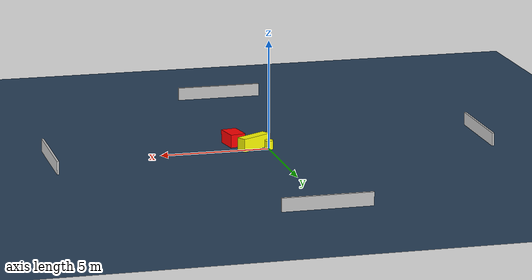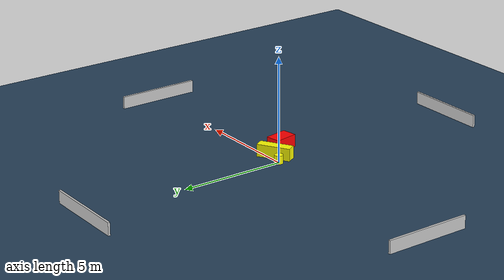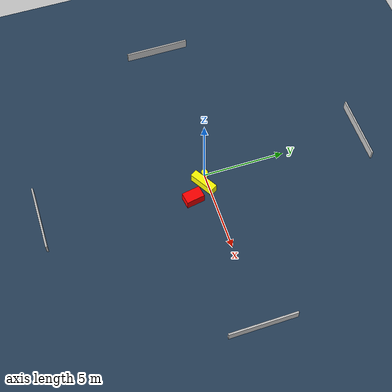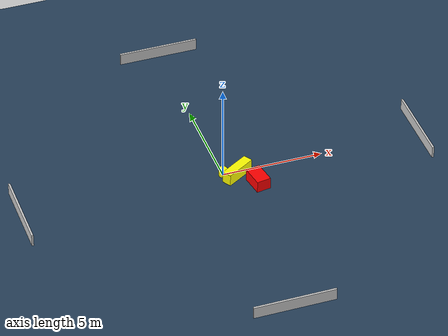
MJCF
<?xml version="1.0" ?>
<mujoco model="generated_environment">
  <option timestep="0.01" integrator="RK4" cone="elliptic"/>
  <default>
    <geom density="1"/>
  </default>
  <asset>
    <texture builtin="gradient" height="3072" name="skybox" rgb1="0.3 0.5 0.7" rgb2="0 0 0" type="skybox" width="512"/>
    <texture builtin="checker" height="300" name="groundplane" rgb1="0.2 0.3 0.4" rgb2="0.1 0.2 0.3" type="2d" width="300"/>
    <material name="groundplane" reflectance="0.2" texrepeat="5 5" texture="groundplane"/>
  </asset>
  <worldbody>
    <light dir="0 0 -1" directional="true" pos="0 0 1.5"/>
    <geom condim="3" friction="0.5 0.005 0.001" material="groundplane" name="floor" pos="0 0 0" size="0 0 0.05" type="plane"/>
    <body name="walls">
      <geom name="wall_1" condim="4" pos="-10.0 0.0 0.3" rgba="0.800000011920929 0.800000011920929 0.800000011920929 1.0" size="0.05 2.0 0.3" type="box"/>
      <geom name="wall_2" condim="4" pos="10.0 0.0 0.3" rgba="0.800000011920929 0.800000011920929 0.800000011920929 1.0" size="0.05 2.0 0.3" type="box"/>
      <geom name="wall_3" condim="4" pos="0.0 -10.0 0.3" rgba="0.800000011920929 0.800000011920929 0.800000011920929 1.0" size="2.0 0.05 0.3" type="box"/>
      <geom name="wall_4" condim="4" pos="0.0 10.0 0.3" rgba="0.800000011920929 0.800000011920929 0.800000011920929 1.0" size="2.0 0.05 0.3" type="box"/>
    </body>
    <body name="robot">
      <joint name="joint_x" type="slide" pos="0 0 0" axis="1 0 0"/>
      <joint name="joint_y" type="slide" pos="0 0 0" axis="0 1 0"/>
      <geom name="robot" type="cylinder" pos="0.0 0.0 0.2" size="0.2 0.2 0.0" mass="5.0" friction="1.0 0.005 0.0001" condim="4" rgba="1.0 1.0 0.0 1.0"/>
    </body>
    <body name="obstacle_1_movable">
      <geom name="obstacle_1_movable" condim="4" pos="0.6385879574856291 -0.26482881326661656 0.3" euler="0 0 300.88109935378026" friction="0.0 0.005 0.001" rgba="1.0 1.0 0.0 1.0" size="0.23419372263180427 0.7980207223272753 0.3" type="box" mass="0.1"/>
      <joint type="free"/>
    </body>
    <body name="obstacle_2_static">
      <geom name="obstacle_2_static" condim="4" pos="1.377835109444746 -1.1526267312757854 0.3" euler="0 0 189.6769768453909" friction="0.0 0.005 0.001" rgba="1.0 0.0 0.0 1.0" size="0.3553552507405906 0.5549287981679025 0.3" type="box"/>
    </body>
  </worldbody>
  <actuator>
    <motor name="actuator_x" joint="joint_x" gear="1" ctrlrange="-1 1"/>
    <motor name="actuator_y" joint="joint_y" gear="1" ctrlrange="-1 1"/>
  </actuator>
</mujoco>
